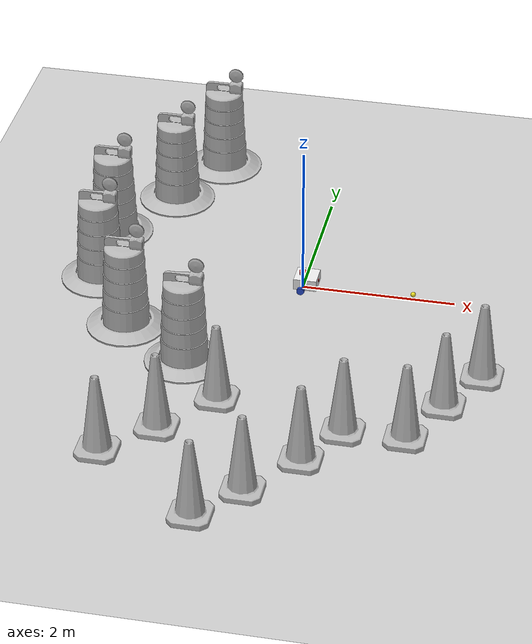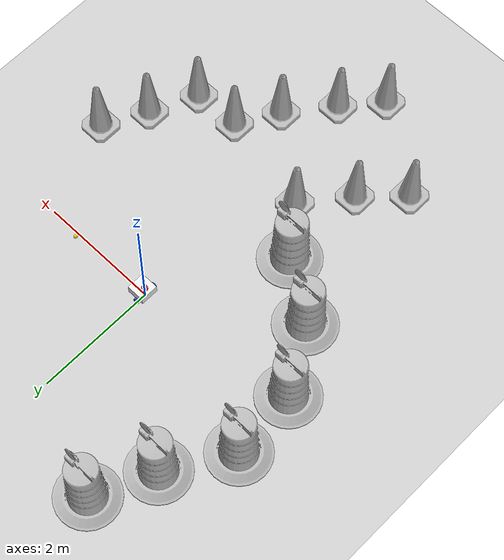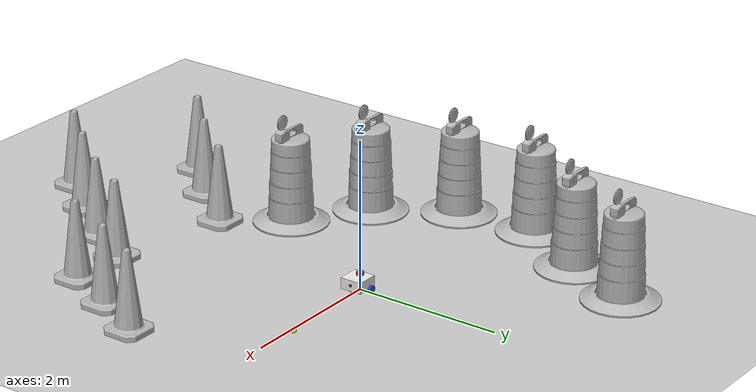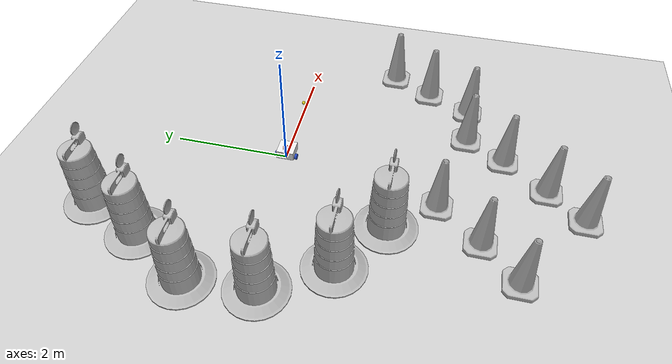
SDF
<sdf version="1.7">
 <world name="default">
  <light name="sun" type="directional">
   <pose>0 0 10 0 -0 0</pose>
   <diffuse>0.8 0.8 0.8 1</diffuse>
   <specular>0.2 0.2 0.2 1</specular>
   <attenuation>
    <range>1000</range>
    <constant>0.9</constant>
    <linear>0.01</linear>
    <quadratic>0.001</quadratic>
   </attenuation>
   <direction>-0.5 0.1 -0.9</direction>
   <spot><inner_angle>0</inner_angle><outer_angle>0</outer_angle><falloff>0</falloff></spot>
  </light>
  <model name="ground_plane">
   <static>1</static>
   <link name="link">
    <collision name="collision">
     <geometry><plane><normal>0 0 1</normal><size>100 100</size></plane></geometry>
     <surface>
      <contact><collide_bitmask>65535</collide_bitmask></contact>
      <friction><ode><mu>100</mu><mu2>50</mu2></ode></friction>
     </surface>
    </collision>
    <visual name="visual">
     <cast_shadows>0</cast_shadows>
     <geometry><plane><normal>0 0 1</normal><size>100 100</size></plane></geometry>
     <material>
      <script><uri>file://media/materials/scripts/gazebo.material</uri><name>Gazebo/Grey</name></script>
     </material>
    </visual>
   </link>
  </model>
  <gravity>0 0 -9.8</gravity>
  <magnetic_field>6e-06 2.3e-05 -4.2e-05</magnetic_field>
  <atmosphere type="adiabatic"/>
  <physics type="ode">
   <max_step_size>0.001</max_step_size>
   <real_time_factor>1</real_time_factor>
   <real_time_update_rate>1000</real_time_update_rate>
  </physics>
  <scene><ambient>0.4 0.4 0.4 1</ambient><background>0.7 0.7 0.7 1</background><shadows>1</shadows></scene>
  <spherical_coordinates>
   <surface_model>EARTH_WGS84</surface_model>
   <latitude_deg>0</latitude_deg>
   <longitude_deg>0</longitude_deg>
   <elevation>0</elevation>
   <heading_deg>0</heading_deg>
  </spherical_coordinates>
  <model name="Construction Barrel">
   <link name="link">
    <inertial>
     <pose>0 0 0.4 0 -0 0</pose>
     <mass>500</mass>
     <inertia><ixx>51.2096</ixx><iyy>51.2096</iyy><izz>25</izz><ixy>0</ixy><ixz>0</ixz><iyz>0</iyz></inertia>
    </inertial>
    <collision name="collision">
     <geometry><mesh><uri>model://construction_barrel/meshes/construction_barrel.dae</uri></mesh></geometry>
    </collision>
    <visual name="visual">
     <geometry><mesh><uri>model://construction_barrel/meshes/construction_barrel.dae</uri></mesh></geometry>
    </visual>
   </link>
   <pose>-2.11199 1.79584 -0 0 -0 -2.7e-05</pose>
  </model>
  <model name="Construction Cone">
   <link name="link">
    <collision name="collision">
     <geometry>
      <mesh><scale>10 10 10</scale><uri>model://construction_cone/meshes/construction_cone.dae</uri></mesh>
     </geometry>
    </collision>
    <visual name="visual">
     <geometry>
      <mesh><scale>10 10 10</scale><uri>model://construction_cone/meshes/construction_cone.dae</uri></mesh>
     </geometry>
    </visual>
    <inertial>
     <inertia><ixx>1</ixx><ixy>0</ixy><ixz>0</ixz><iyy>1</iyy><iyz>0</iyz><izz>1</izz></inertia>
     <mass>1</mass>
    </inertial>
   </link>
   <pose>2.5877 -1.55159 -0 0 -0 0</pose>
  </model>
  <model name="Construction Barrel_clone">
   <link name="link">
    <inertial>
     <pose>0 0 0.4 0 -0 0</pose>
     <mass>500</mass>
     <inertia><ixx>51.2096</ixx><iyy>51.2096</iyy><izz>25</izz><ixy>0</ixy><ixz>0</ixz><iyz>0</iyz></inertia>
    </inertial>
    <collision name="collision">
     <geometry><mesh><uri>model://construction_barrel/meshes/construction_barrel.dae</uri></mesh></geometry>
    </collision>
    <visual name="visual">
     <geometry><mesh><uri>model://construction_barrel/meshes/construction_barrel.dae</uri></mesh></geometry>
    </visual>
   </link>
   <pose>-1.6664 2.75621 -1e-06 2e-06 -1e-06 -2.4e-05</pose>
  </model>
  <model name="Construction Cone_clone">
   <link name="link">
    <collision name="collision">
     <geometry>
      <mesh><scale>10 10 10</scale><uri>model://construction_cone/meshes/construction_cone.dae</uri></mesh>
     </geometry>
    </collision>
    <visual name="visual">
     <geometry>
      <mesh><scale>10 10 10</scale><uri>model://construction_cone/meshes/construction_cone.dae</uri></mesh>
     </geometry>
    </visual>
    <inertial>
     <inertia><ixx>1</ixx><ixy>0</ixy><ixz>0</ixz><iyy>1</iyy><iyz>0</iyz><izz>1</izz></inertia>
     <mass>1</mass>
    </inertial>
   </link>
   <pose>1.87154 -3.00622 -5e-06 -4e-06 1e-06 0</pose>
  </model>
  <model name="my_bot">
   <link name="base_link">
    <inertial>
     <pose>0.055714 0 0.078571 0 -0 0</pose>
     <mass>0.7</mass>
     <inertia>
      <ixx>0.0064169</ixx>
      <ixy>0</ixy>
      <ixz>0.00118929</ixz>
      <iyy>0.00745405</iyy>
      <iyz>0</iyz>
      <izz>0.00876214</izz>
     </inertia>
    </inertial>
    <collision name="base_link_fixed_joint_lump__chassis_collision">
     <pose>0.05 0 0.075 0 -0 0</pose>
     <geometry><box><size>0.3 0.3 0.15</size></box></geometry>
    </collision>
    <collision name="base_link_fixed_joint_lump__caster_wheel_collision_1">
     <pose>0.14 0 0 0 -0 0</pose>
     <geometry><sphere><radius>0.05</radius></sphere></geometry>
     <surface><friction><ode><mu>0.001</mu><mu2>0.001</mu2></ode></friction></surface>
    </collision>
    <collision name="base_link_fixed_joint_lump__laser_frame_collision_2">
     <pose>0 0 0.175 0 -0 0</pose>
     <geometry><cylinder><length>0.04</length><radius>0.05</radius></cylinder></geometry>
    </collision>
    <visual name="base_link_fixed_joint_lump__chassis_visual">
     <pose>0.05 0 0.075 0 -0 0</pose>
     <geometry><box><size>0.3 0.3 0.15</size></box></geometry>
     <material>
      <script><name>Gazebo/White</name><uri>file://media/materials/scripts/gazebo.material</uri></script>
     </material>
    </visual>
    <visual name="base_link_fixed_joint_lump__camera_link_visual_1">
     <pose>0.205 0 0.08 0 -0 0</pose>
     <geometry><box><size>0.01 0.03 0.03</size></box></geometry>
     <material>
      <script><name>Gazebo/Red</name><uri>file://media/materials/scripts/gazebo.material</uri></script>
     </material>
    </visual>
    <visual name="base_link_fixed_joint_lump__caster_wheel_visual_2">
     <pose>0.14 0 0 0 -0 0</pose>
     <geometry><sphere><radius>0.05</radius></sphere></geometry>
     <material>
      <script><name>Gazebo/Black</name><uri>file://media/materials/scripts/gazebo.material</uri></script>
     </material>
    </visual>
    <visual name="base_link_fixed_joint_lump__laser_frame_visual_3">
     <pose>0 0 0.175 0 -0 0</pose>
     <geometry><cylinder><length>0.04</length><radius>0.05</radius></cylinder></geometry>
     <material>
      <script><name>Gazebo/Red</name><uri>file://media/materials/scripts/gazebo.material</uri></script>
     </material>
    </visual>
    <sensor name="camera" type="camera">
     <visualize>1</visualize>
     <update_rate>10</update_rate>
     <camera>
      <horizontal_fov>1.089</horizontal_fov>
      <image><format>R8G8B8</format><width>640</width><height>480</height></image>
      <clip><near>0.05</near><far>8</far></clip>
     </camera>
     <plugin name="camera_controller" filename="libgazebo_ros_camera.so">
      <frame_name>camera_image_optical</frame_name>
     </plugin>
     <pose>0.205 0 0.08 0 -0 0</pose>
    </sensor>
    <sensor name="laser" type="ray">
     <visualize>0</visualize>
     <update_rate>10</update_rate>
     <ray>
      <scan>
       <horizontal>
        <samples>360</samples>
        <resolution>1</resolution>
        <min_angle>-3.14</min_angle>
        <max_angle>3.14</max_angle>
       </horizontal>
       <vertical><samples>1</samples><min_angle>0</min_angle><max_angle>0</max_angle></vertical>
      </scan>
      <range><min>0.3</min><max>12</max><resoluton>0.01</resoluton></range>
     </ray>
     <plugin name="laser_controller" filename="libgazebo_ros_ray_sensor.so">
      <ros><argument>~/out:=scan</argument></ros>
      <output_type>sensor_msgs/LaserScan</output_type>
      <frame_name>laser_frame</frame_name>
     </plugin>
     <pose>0 0 0.175 0 -0 0</pose>
    </sensor>
   </link>
   <joint name="left_wheel_joint" type="revolute">
    <pose relative_to="base_link">0 0.175 0 -1.5708 0 0</pose>
    <parent>base_link</parent>
    <child>left_wheel</child>
    <axis>
     <xyz>0 0 1</xyz>
     <limit><lower>-1e+16</lower><upper>1e+16</upper></limit>
     <dynamics><spring_reference>0</spring_reference><spring_stiffness>0</spring_stiffness></dynamics>
    </axis>
   </joint>
   <link name="left_wheel">
    <pose relative_to="left_wheel_joint">0 0 0 0 -0 0</pose>
    <inertial>
     <mass>0.1</mass>
     <inertia>
      <ixx>7.58333e-05</ixx>
      <ixy>0</ixy>
      <ixz>0</ixz>
      <iyy>7.58333e-05</iyy>
      <iyz>0</iyz>
      <izz>0.000125</izz>
     </inertia>
    </inertial>
    <collision name="left_wheel_collision">
     <geometry><cylinder><length>0.04</length><radius>0.05</radius></cylinder></geometry>
    </collision>
    <visual name="left_wheel_visual">
     <geometry><cylinder><length>0.04</length><radius>0.05</radius></cylinder></geometry>
     <material>
      <script><name>Gazebo/Blue</name><uri>file://media/materials/scripts/gazebo.material</uri></script>
     </material>
    </visual>
   </link>
   <joint name="right_wheel_joint" type="revolute">
    <pose relative_to="base_link">0 -0.175 0 1.5708 -0 0</pose>
    <parent>base_link</parent>
    <child>right_wheel</child>
    <axis>
     <xyz>0 0 -1</xyz>
     <limit><lower>-1e+16</lower><upper>1e+16</upper></limit>
     <dynamics><spring_reference>0</spring_reference><spring_stiffness>0</spring_stiffness></dynamics>
    </axis>
   </joint>
   <link name="right_wheel">
    <pose relative_to="right_wheel_joint">0 0 0 0 -0 0</pose>
    <inertial>
     <mass>0.1</mass>
     <inertia>
      <ixx>7.58333e-05</ixx>
      <ixy>0</ixy>
      <ixz>0</ixz>
      <iyy>7.58333e-05</iyy>
      <iyz>0</iyz>
      <izz>0.000125</izz>
     </inertia>
    </inertial>
    <collision name="right_wheel_collision">
     <geometry><cylinder><length>0.04</length><radius>0.05</radius></cylinder></geometry>
    </collision>
    <visual name="right_wheel_visual">
     <geometry><cylinder><length>0.04</length><radius>0.05</radius></cylinder></geometry>
     <material>
      <script><name>Gazebo/Blue</name><uri>file://media/materials/scripts/gazebo.material</uri></script>
     </material>
    </visual>
   </link>
   <static>0</static>
   <plugin name="gazebo_ros2_control" filename="libgazebo_ros2_control.so">
    <parameters>/home/ceb/dev_ws/src/my_bot/config/my_controllers.yaml</parameters>
   </plugin>
   <pose>0.003323 -7e-06 0.05 -0 1e-06 0.000553</pose>
  </model>
  <model name="Construction Barrel_clone_0">
   <link name="link">
    <inertial>
     <pose>0 0 0.4 0 -0 0</pose>
     <mass>500</mass>
     <inertia><ixx>51.2096</ixx><iyy>51.2096</iyy><izz>25</izz><ixy>0</ixy><ixz>0</ixz><iyz>0</iyz></inertia>
    </inertial>
    <collision name="collision">
     <geometry><mesh><uri>model://construction_barrel/meshes/construction_barrel.dae</uri></mesh></geometry>
    </collision>
    <visual name="visual">
     <geometry><mesh><uri>model://construction_barrel/meshes/construction_barrel.dae</uri></mesh></geometry>
    </visual>
   </link>
   <pose>-2.7315 0.799762 -0 0 0 -3.4e-05</pose>
  </model>
  <model name="Construction Barrel_clone_1">
   <link name="link">
    <inertial>
     <pose>0 0 0.4 0 -0 0</pose>
     <mass>500</mass>
     <inertia><ixx>51.2096</ixx><iyy>51.2096</iyy><izz>25</izz><ixy>0</ixy><ixz>0</ixz><iyz>0</iyz></inertia>
    </inertial>
    <collision name="collision">
     <geometry><mesh><uri>model://construction_barrel/meshes/construction_barrel.dae</uri></mesh></geometry>
    </collision>
    <visual name="visual">
     <geometry><mesh><uri>model://construction_barrel/meshes/construction_barrel.dae</uri></mesh></geometry>
    </visual>
   </link>
   <pose>-2.64131 -0.317845 -0 0 -0 -2.8e-05</pose>
  </model>
  <model name="Construction Barrel_clone_2">
   <link name="link">
    <inertial>
     <pose>0 0 0.4 0 -0 0</pose>
     <mass>500</mass>
     <inertia><ixx>51.2096</ixx><iyy>51.2096</iyy><izz>25</izz><ixy>0</ixy><ixz>0</ixz><iyz>0</iyz></inertia>
    </inertial>
    <collision name="collision">
     <geometry><mesh><uri>model://construction_barrel/meshes/construction_barrel.dae</uri></mesh></geometry>
    </collision>
    <visual name="visual">
     <geometry><mesh><uri>model://construction_barrel/meshes/construction_barrel.dae</uri></mesh></geometry>
    </visual>
   </link>
   <pose>-2.03604 -1.31794 -2e-06 0 7e-06 -2.8e-05</pose>
  </model>
  <model name="Construction Barrel_clone_3">
   <link name="link">
    <inertial>
     <pose>0 0 0.4 0 -0 0</pose>
     <mass>500</mass>
     <inertia><ixx>51.2096</ixx><iyy>51.2096</iyy><izz>25</izz><ixy>0</ixy><ixz>0</ixz><iyz>0</iyz></inertia>
    </inertial>
    <collision name="collision">
     <geometry><mesh><uri>model://construction_barrel/meshes/construction_barrel.dae</uri></mesh></geometry>
    </collision>
    <visual name="visual">
     <geometry><mesh><uri>model://construction_barrel/meshes/construction_barrel.dae</uri></mesh></geometry>
    </visual>
   </link>
   <pose>-1.12292 -1.94264 -0 0 -0 -2.8e-05</pose>
  </model>
  <model name="Construction Cone_clone_clone">
   <link name="link">
    <collision name="collision">
     <geometry>
      <mesh><scale>10 10 10</scale><uri>model://construction_cone/meshes/construction_cone.dae</uri></mesh>
     </geometry>
    </collision>
    <visual name="visual">
     <geometry>
      <mesh><scale>10 10 10</scale><uri>model://construction_cone/meshes/construction_cone.dae</uri></mesh>
     </geometry>
    </visual>
    <inertial>
     <inertia><ixx>1</ixx><ixy>0</ixy><ixz>0</ixz><iyy>1</iyy><iyz>0</iyz><izz>1</izz></inertia>
     <mass>1</mass>
    </inertial>
   </link>
   <pose>-0.537004 -2.67224 -0 0 -0 0</pose>
  </model>
  <model name="Construction Cone_clone_clone_0">
   <link name="link">
    <collision name="collision">
     <geometry>
      <mesh><scale>10 10 10</scale><uri>model://construction_cone/meshes/construction_cone.dae</uri></mesh>
     </geometry>
    </collision>
    <visual name="visual">
     <geometry>
      <mesh><scale>10 10 10</scale><uri>model://construction_cone/meshes/construction_cone.dae</uri></mesh>
     </geometry>
    </visual>
    <inertial>
     <inertia><ixx>1</ixx><ixy>0</ixy><ixz>0</ixz><iyy>1</iyy><iyz>0</iyz><izz>1</izz></inertia>
     <mass>1</mass>
    </inertial>
   </link>
   <pose>-1.11956 -3.39613 -8e-06 -5e-06 -0 -0</pose>
  </model>
  <model name="Construction Cone_clone_clone_1">
   <link name="link">
    <collision name="collision">
     <geometry>
      <mesh><scale>10 10 10</scale><uri>model://construction_cone/meshes/construction_cone.dae</uri></mesh>
     </geometry>
    </collision>
    <visual name="visual">
     <geometry>
      <mesh><scale>10 10 10</scale><uri>model://construction_cone/meshes/construction_cone.dae</uri></mesh>
     </geometry>
    </visual>
    <inertial>
     <inertia><ixx>1</ixx><ixy>0</ixy><ixz>0</ixz><iyy>1</iyy><iyz>0</iyz><izz>1</izz></inertia>
     <mass>1</mass>
    </inertial>
   </link>
   <pose>-1.7101 -3.99026 -0 0 -0 0</pose>
  </model>
  <model name="Construction Cone_clone_clone_2">
   <link name="link">
    <collision name="collision">
     <geometry>
      <mesh><scale>10 10 10</scale><uri>model://construction_cone/meshes/construction_cone.dae</uri></mesh>
     </geometry>
    </collision>
    <visual name="visual">
     <geometry>
      <mesh><scale>10 10 10</scale><uri>model://construction_cone/meshes/construction_cone.dae</uri></mesh>
     </geometry>
    </visual>
    <inertial>
     <inertia><ixx>1</ixx><ixy>0</ixy><ixz>0</ixz><iyy>1</iyy><iyz>0</iyz><izz>1</izz></inertia>
     <mass>1</mass>
    </inertial>
   </link>
   <pose>-0.325261 -4.98692 -3e-06 -3e-06 -1e-06 -0</pose>
  </model>
  <model name="Construction Cone_clone_clone_3">
   <link name="link">
    <collision name="collision">
     <geometry>
      <mesh><scale>10 10 10</scale><uri>model://construction_cone/meshes/construction_cone.dae</uri></mesh>
     </geometry>
    </collision>
    <visual name="visual">
     <geometry>
      <mesh><scale>10 10 10</scale><uri>model://construction_cone/meshes/construction_cone.dae</uri></mesh>
     </geometry>
    </visual>
    <inertial>
     <inertia><ixx>1</ixx><ixy>0</ixy><ixz>0</ixz><iyy>1</iyy><iyz>0</iyz><izz>1</izz></inertia>
     <mass>1</mass>
    </inertial>
   </link>
   <pose>0.166749 -4.40126 -4e-06 4e-06 -1e-06 0</pose>
  </model>
  <model name="Construction Cone_clone_clone_4">
   <link name="link">
    <collision name="collision">
     <geometry>
      <mesh><scale>10 10 10</scale><uri>model://construction_cone/meshes/construction_cone.dae</uri></mesh>
     </geometry>
    </collision>
    <visual name="visual">
     <geometry>
      <mesh><scale>10 10 10</scale><uri>model://construction_cone/meshes/construction_cone.dae</uri></mesh>
     </geometry>
    </visual>
    <inertial>
     <inertia><ixx>1</ixx><ixy>0</ixy><ixz>0</ixz><iyy>1</iyy><iyz>0</iyz><izz>1</izz></inertia>
     <mass>1</mass>
    </inertial>
   </link>
   <pose>0.721695 -3.68648 -5e-06 -4e-06 1e-06 0</pose>
  </model>
  <model name="Construction Cone_clone_clone_5">
   <link name="link">
    <collision name="collision">
     <geometry>
      <mesh><scale>10 10 10</scale><uri>model://construction_cone/meshes/construction_cone.dae</uri></mesh>
     </geometry>
    </collision>
    <visual name="visual">
     <geometry>
      <mesh><scale>10 10 10</scale><uri>model://construction_cone/meshes/construction_cone.dae</uri></mesh>
     </geometry>
    </visual>
    <inertial>
     <inertia><ixx>1</ixx><ixy>0</ixy><ixz>0</ixz><iyy>1</iyy><iyz>0</iyz><izz>1</izz></inertia>
     <mass>1</mass>
    </inertial>
   </link>
   <pose>1.10688 -3.02913 -0 0 -0 0</pose>
  </model>
  <model name="Construction Cone_clone_clone_6">
   <link name="link">
    <collision name="collision">
     <geometry>
      <mesh><scale>10 10 10</scale><uri>model://construction_cone/meshes/construction_cone.dae</uri></mesh>
     </geometry>
    </collision>
    <visual name="visual">
     <geometry>
      <mesh><scale>10 10 10</scale><uri>model://construction_cone/meshes/construction_cone.dae</uri></mesh>
     </geometry>
    </visual>
    <inertial>
     <inertia><ixx>1</ixx><ixy>0</ixy><ixz>0</ixz><iyy>1</iyy><iyz>0</iyz><izz>1</izz></inertia>
     <mass>1</mass>
    </inertial>
   </link>
   <pose>2.21712 -2.25225 -4e-06 4e-06 -1e-06 0</pose>
  </model>
  <model name="TennisBall">
   <link name="link">
    <inertial>
     <mass>1</mass>
     <inertia><ixx>0.1</ixx><ixy>0</ixy><ixz>0</ixz><iyy>0.1</iyy><iyz>0</iyz><izz>0.1</izz></inertia>
    </inertial>
    <visual name="visual">
     <geometry><sphere><radius>0.033</radius></sphere></geometry>
     <material>
      <script><name>Gazebo/Yellow</name><uri>file://media/materials/scripts/gazebo.material</uri></script>
      <shader type="pixel"><normal_map>__default__</normal_map></shader>
      <ambient>1 1 0 1</ambient>
      <diffuse>1 1 0 1</diffuse>
      <emissive>0 0 0 1</emissive>
     </material>
    </visual>
    <collision name="collision">
     <geometry><sphere><radius>0.033</radius></sphere></geometry>
     <surface>
      <friction>
       <ode><mu>1</mu><mu2>1</mu2><fdir1>0 0 0</fdir1><slip1>0</slip1><slip2>0</slip2></ode>
       <torsional>
        <coefficient>1</coefficient>
        <patch_radius>0</patch_radius>
        <surface_radius>0</surface_radius>
        <use_patch_radius>1</use_patch_radius>
        <ode><slip>0</slip></ode>
       </torsional>
      </friction>
      <bounce><restitution_coefficient>0</restitution_coefficient><threshold>1e+06</threshold></bounce>
      <contact>
       <collide_without_contact>0</collide_without_contact>
       <collide_without_contact_bitmask>1</collide_without_contact_bitmask>
       <collide_bitmask>1</collide_bitmask>
       <ode>
        <soft_cfm>0</soft_cfm>
        <soft_erp>0.2</soft_erp>
        <kp>1e+13</kp>
        <kd>1</kd>
        <max_vel>0.01</max_vel>
        <min_depth>0</min_depth>
       </ode>
       <bullet>
        <split_impulse>1</split_impulse>
        <split_impulse_penetration_threshold>-0.01</split_impulse_penetration_threshold>
        <soft_cfm>0</soft_cfm>
        <soft_erp>0.2</soft_erp>
        <kp>1e+13</kp>
        <kd>1</kd>
       </bullet>
      </contact>
     </surface>
    </collision>
   </link>
   <static>0</static>
   <pose>1.44547 0.069965 0.033 0 -0 0</pose>
  </model>
 </world>
</sdf>
